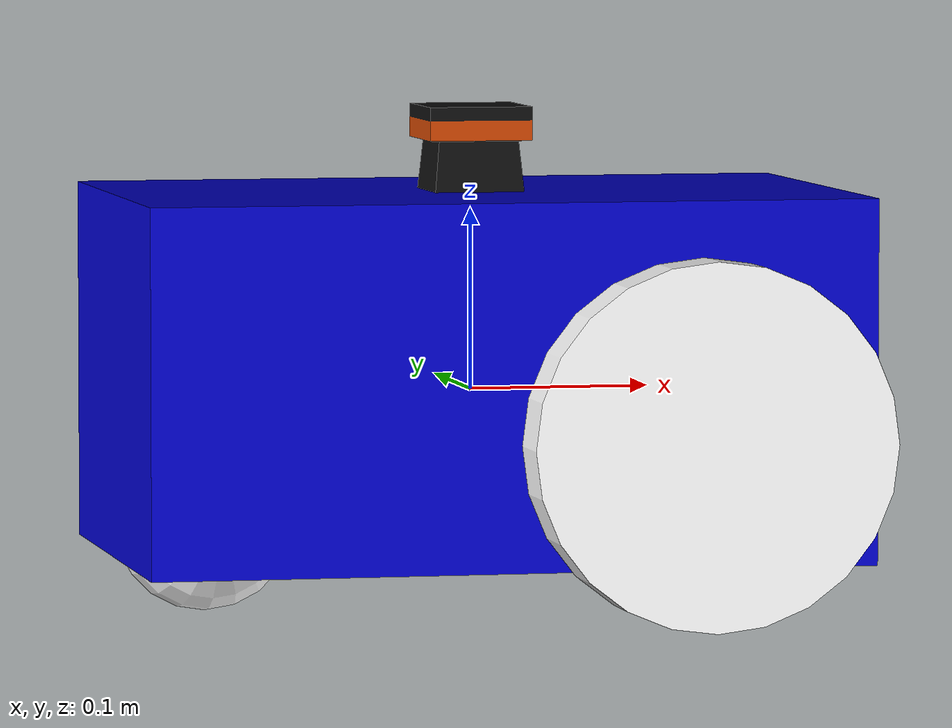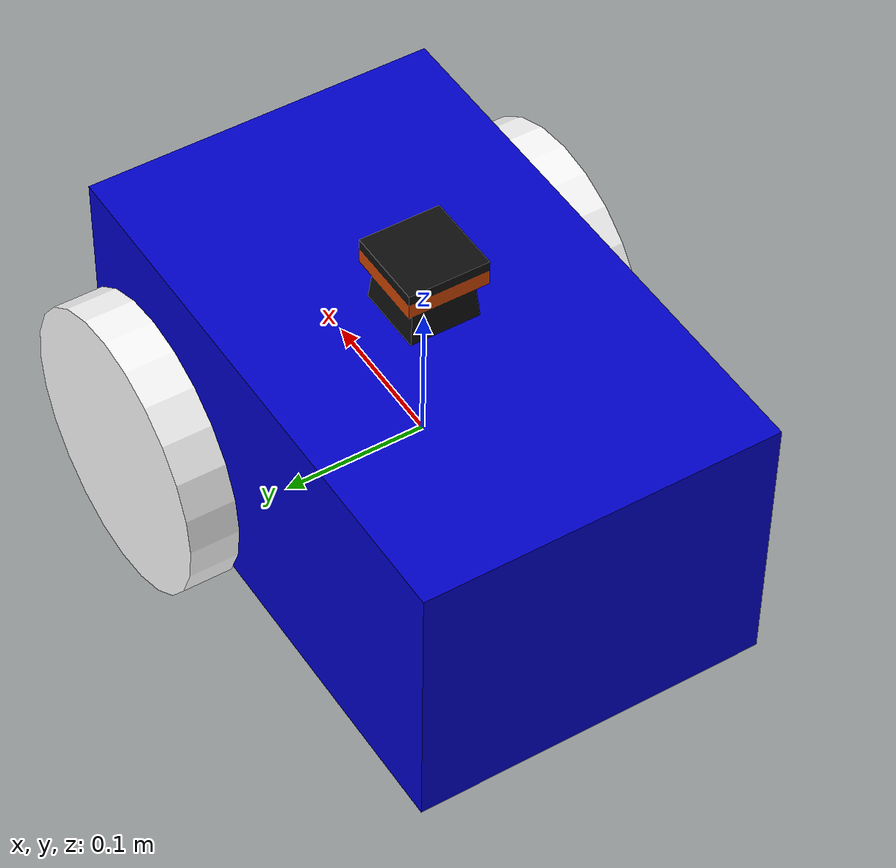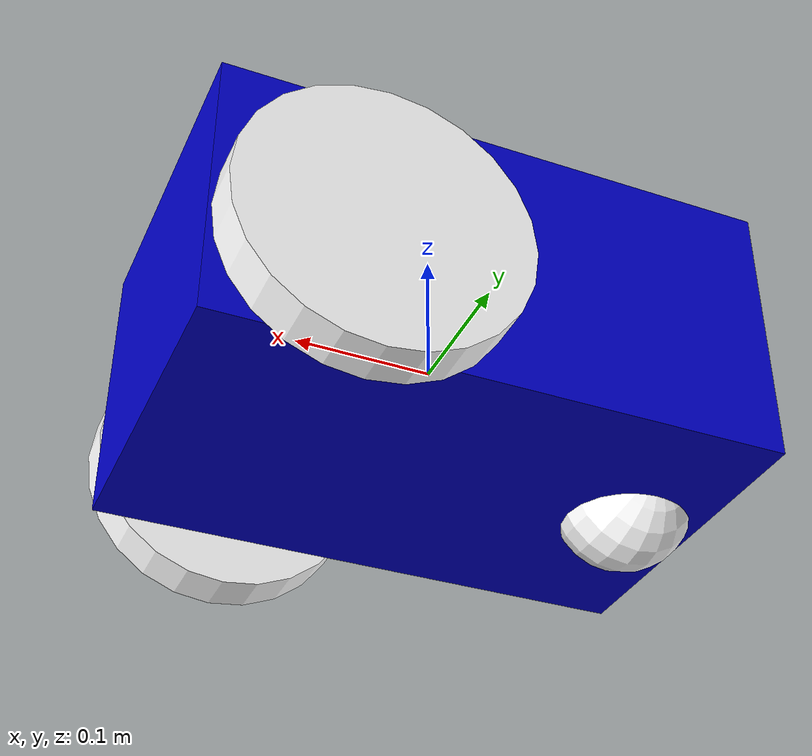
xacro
<?xml version="1.0"?>
<robot name="dummyRplidarSquare" xmlns:xacro="http://ros.org/wiki/xacro">

    <material name="blue">
        <color rgba="0 0 0.8 1"/>
    </material>
    <material name="black">
        <color rgba="0 0 0 1"/>
    </material>
    <material name="white">
        <color rgba="1 1 1 1"/>
    </material>

    <xacro:property name="baseWidth" value="0.25" />
    <xacro:property name="baseHeight" value="0.2" />
    <xacro:property name="baseLength" value="0.4" />
    <xacro:property name="baseClearance" value="0.03" />
    <xacro:property name="wheelsPosition" value="+0.10" />
    <xacro:property name="casterPosition" value="-0.15" />

    <xacro:property name="wheelRadius" value="0.1" />
    <xacro:property name="wheelThickness" value="0.035" />
    <xacro:property name="wheelClearance" value="0.01" />
    <xacro:property name="wheelMass" value="2" />
    <xacro:property name="hingeHeightInBase" value="0.07" />

    <xacro:property name="casterRadius" value="0.05" />
    <xacro:property name="casterHeight" value="0.04" />
    <xacro:property name="casterMass" value="0.00001" />

    <xacro:macro name="default_inertial" params="mass">
        <inertial>
            <mass value="${mass}" />
            <inertia ixx="1.0" ixy="0.0" ixz="0.0" iyy="1.0" iyz="0.0" izz="1.0" />
        </inertial>
    </xacro:macro>

    <link name="base_footprint"/>
    <joint name="base_joint" type="fixed">
      <origin xyz="0 0 0.0102" rpy="0 0 0" />
      <parent link="base_footprint"/>
      <child link="base_link" />
    </joint>

    <link name="base_link">
        <visual>
            <geometry>
                <box size="${baseLength} ${baseWidth} ${baseHeight}"/>
            </geometry>
            <material name="blue"/>
        </visual>
        <collision>
            <geometry>
                <box size="${baseLength} ${baseWidth} ${baseHeight}"/>
            </geometry>
        </collision>
        <inertial>
          <mass value="10"/>
          <inertia ixx="0.1667" ixy="0.0" ixz="0.0" iyy="0.1854" iyz="0.0" izz="0.0854"/>
        </inertial>
    </link>

    <link name="right_wheel">
        <visual>
            <origin rpy="0 0 0" xyz="0 0 0"/>
            <geometry>
                <cylinder length="${wheelThickness}" radius="${wheelRadius}"/>
            </geometry>
            <material name="white"/>
        </visual>
        <collision>
            <origin rpy="0 0 0" xyz="0 0 0"/>
            <geometry>
                <cylinder length="${wheelThickness}" radius="${wheelRadius}"/>
            </geometry>
        </collision>
        <inertial>
            <origin rpy="0 0 0" xyz="0 0 0"/>
            <mass value="${wheelMass}"/>
            <inertia ixx="0.0052" ixy="0.0" ixz="0.0" iyy="0.0052" iyz="0.0" izz="0.01"/>
        </inertial>
    </link>

    <joint name="base_to_right_wheel" type="continuous">
        <axis rpy="0 0 0" xyz="0 0 1"/>
        <parent link="base_link"/>
        <child link="right_wheel"/>
        <origin xyz="${wheelsPosition} -${(wheelThickness/2 + baseWidth/2 + wheelClearance)} -${baseHeight/2 - hingeHeightInBase}" rpy="-1.57075 0 0"/>

    </joint>

    <!-- This block provides the simulator (Gazebo) with information on a few additional
    physical properties. See http://gazebosim.org/tutorials/?tut=ros_urdf for more-->
    <gazebo reference="right_wheel">
        <mu1 value="75.0"/>
        <mu2 value="75.0"/>
        <kp value="1000000.0" />
        <kd value="1.0" />
        <material>Gazebo/Grey</material>
    </gazebo>

    <!-- This block connects the wheel joint to an actuator (motor), which informs both
    simulation and visualization of the robot -->
    <transmission name="right_wheel_trans">
        <type>transmission_interface/SimpleTransmission</type>
        <actuator name="right_wheel_motor">
            <mechanicalReduction>1</mechanicalReduction>
        </actuator>
        <joint name="base_to_right_wheel">
            <hardwareInterface>hardware_interface/VelocityJointInterface</hardwareInterface>
        </joint>
    </transmission>

    <link name="left_wheel">
        <visual>
            <origin rpy="0 0 0" xyz="0 0 0"/>
            <geometry>
                <cylinder length="${wheelThickness}" radius="${wheelRadius}"/>
            </geometry>
            <material name="white"/>
        </visual>
        <collision>
            <origin rpy="0 0 0" xyz="0 0 0"/>
            <geometry>
                <cylinder length="${wheelThickness}" radius="${wheelRadius}"/>
            </geometry>
        </collision>
        <inertial>
            <origin rpy="0 0 0" xyz="0 0 0"/>
            <mass value="${wheelMass}"/>
            <inertia ixx="0.0052" ixy="0.0" ixz="0.0" iyy="0.0052" iyz="0.0" izz="0.01"/>
        </inertial>
    </link>

    <joint name="base_to_left_wheel" type="continuous">
        <axis rpy="0 0 0" xyz="0 0 1"/>
        <parent link="base_link"/>
        <child link="left_wheel"/>
        <origin xyz="${wheelsPosition} +${(wheelThickness/2 + baseWidth/2 + wheelClearance)} -${baseHeight/2 - hingeHeightInBase}" rpy="-1.57075 0 0"/>

    </joint>

    <!-- This block provides the simulator (Gazebo) with information on a few additional
    physical properties. See http://gazebosim.org/tutorials/?tut=ros_urdf for more-->
    <gazebo reference="left_wheel">
        <mu1 value="75.0"/>
        <mu2 value="75.0"/>
        <kp value="1000000.0" />
        <kd value="1.0" />
        <material>Gazebo/Grey</material>
    </gazebo>

    <!-- This block connects the wheel joint to an actuator (motor), which informs both
    simulation and visualization of the robot -->
    <transmission name="left_wheel_trans">
        <type>transmission_interface/SimpleTransmission</type>
        <actuator name="left_wheel_motor">
            <mechanicalReduction>1</mechanicalReduction>
        </actuator>
        <joint name="base_to_left_wheel">
            <hardwareInterface>hardware_interface/VelocityJointInterface</hardwareInterface>
        </joint>
    </transmission>

    <link name="caster_back">
        <visual>
            <origin rpy="0 0 0" xyz="0 0 0"/>
            <geometry>
                <sphere radius="${casterRadius}"/>
            </geometry>
            <material name="white"/>
        </visual>
        <collision>
            <geometry>
                <sphere radius="${casterRadius}"/>
            </geometry>
            <surface>
                <friction>
                    <ode>
                        <mu>0</mu>
                        <mu2>0</mu2>
                        <slip1>1.0</slip1>
                        <slip2>1.0</slip2>
                    </ode>
                </friction>
            </surface>
        </collision>
        <inertial>
            <mass value="${casterMass}"/>
            <inertia ixx="0.00000001" ixy="0.0" ixz="0.0" iyy="0.00000001" iyz="0.0" izz="0.00000001"/>
        </inertial>
    </link>

    <joint name="base_to_caster_back" type="fixed">
        <parent link="base_link"/>
        <child link="caster_back"/>
        <origin xyz="${casterPosition} 0 -${baseHeight/2 + baseClearance - casterRadius}" rpy="1.57075 0 0"/>
    </joint>

    <gazebo reference="base_to_caster_back">
        <mu1 value="0.0"/>
        <mu2 value="0.0"/>
        <kp value="1000000.0" />
        <kd value="1.0" />
        <material>Gazebo/Grey</material>
    </gazebo>

    <!-- Kobuki's sensors -->
    <joint name="gyro_joint" type="fixed">
      <axis xyz="0 1 0"/>
      <origin xyz="${wheelsPosition} 0 -${baseHeight/2 - hingeHeightInBase}" rpy="0 0 0"/>
      <parent link="base_link"/>
      <child link="gyro_link"/>
    </joint>
    <link name="gyro_link">
      <inertial>
        <mass value="0.001"/>
        <origin xyz="0 0 0" rpy="0 0 0"/>
        <inertia ixx="0.0001" ixy="0" ixz="0"
                 iyy="0.000001" iyz="0"
                 izz="0.0001"/>
      </inertial>
    </link>

    <gazebo reference="gyro_link">
        <gravity>true</gravity>
        <sensor name="imu_sensor" type="imu">
            <always_on>true</always_on>
            <update_rate>100</update_rate>
            <visualize>true</visualize>
            <topic>__default_topic__</topic>
            <plugin filename="libgazebo_ros_imu_sensor.so" name="imu_plugin">
                <topicName>imu</topicName>
                <bodyName>gyro_link</bodyName>
                <updateRateHZ>10.0</updateRateHZ>
                <gaussianNoise>0.0</gaussianNoise>
                <xyzOffset>0 0 0</xyzOffset>
                <rpyOffset>0 0 0</rpyOffset>
                <frameName>gyro_link</frameName>
            </plugin>
            <pose>0 0 0 0 0 0</pose>
        </sensor>
    </gazebo>

    <gazebo>
      <plugin name="gazebo_ros_control" filename="libgazebo_ros_control.so">
        <robotNamespace>/</robotNamespace>

      </plugin>
    </gazebo>

    <xacro:include filename="$(find hector_sensors_description)/urdf/hokuyo_utm30lx.urdf.xacro" />
    <!-- For the moment, we only have a hokuyo with rplidar'specs. -->
     <xacro:hokuyo_utm30lx name="hokuyo_laser" parent="base_link" ros_topic="scan" update_rate="5.5" ray_count="360" min_angle="0" max_angle="359">
       <origin xyz="0 0 ${(baseClearance + baseHeight)/2}" rpy="0 0 0"/>
     </xacro:hokuyo_utm30lx>

</robot>

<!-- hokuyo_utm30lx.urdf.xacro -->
<robot xmlns:xacro="http://ros.org/wiki/xacro">
    <xacro:property name="M_PI" value="3.1415926535897931" />

    <xacro:macro name="hokuyo_utm30lx_model" params="name parent *origin">
      <joint name="${name}_joint" type="fixed">
        <xacro:insert_block name="origin" />
        <parent link="${parent}"/>
        <child link="${name}_frame"/>
      </joint>

      <link name="${name}_frame">
        <inertial>
          <mass value="0.270" />
          <origin xyz="0 0 0" rpy="0 0 0" />
          <inertia ixx="2.632e-4" ixy="0" ixz="0" iyy="2.632e-4" iyz="0" izz="1.62e-4" />
        </inertial>
        <visual>
          <origin xyz="0 0 0" rpy="0 0 0" />
          <geometry>
          <mesh filename="package://hector_sensors_description/meshes/hokuyo_utm30lx/hokuyo_utm_30lx$(optenv TEST_SELF_FILTER).dae"/>
        </geometry>
        </visual>
        <collision>
          <origin xyz="0.00 0 0.0" rpy="0 ${0.5 * M_PI} 0" />
          <geometry>
	    <cylinder length="0.079" radius="0.0735"/>
        </geometry>
        </collision>
      </link>
    </xacro:macro>

    <xacro:macro name="hokuyo_utm30lx" params="name parent *origin ros_topic update_rate ray_count min_angle max_angle">
      <xacro:hokuyo_utm30lx_model name="${name}" parent="${parent}">
        <xacro:insert_block name="origin" />
      </xacro:hokuyo_utm30lx_model>

      <gazebo reference="${name}_frame">
        <sensor type="ray" name="${name}">
          <always_on>true</always_on>
          <update_rate>${update_rate}</update_rate>
          <pose>0 0 0 0 0 0</pose>
          <visualize>false</visualize>
          <ray>
            <scan>
              <horizontal>
                <samples>${ray_count}</samples>
                <resolution>1</resolution>
                <min_angle>${min_angle * M_PI/180}</min_angle>
                <max_angle>${max_angle * M_PI/180}</max_angle>
              </horizontal>
            </scan>
            <range>
              <min>0.2</min>
              <max>30.0</max>
              <resolution>0.01</resolution>
            </range>
            <noise>
              <type>gaussian</type>
              <mean>0.0</mean>
              <stddev>0.004</stddev>
            </noise>
          </ray>
          <plugin name="gazebo_ros_${name}_controller" filename="libgazebo_ros_laser.so">
            <gaussianNoise>0.005</gaussianNoise>
            <hokuyoMinIntensity>2000</hokuyoMinIntensity>
            <alwaysOn>true</alwaysOn>
	    <robotNamespace>$(arg robot_name)/sensor/</robotNamespace>
            <updateRate>${update_rate}</updateRate>
            <topicName>${ros_topic}</topicName>
            <frameName>${name}_frame</frameName>
          </plugin>
        </sensor>
      </gazebo>
    </xacro:macro>

    <xacro:macro name="hokuyo_utm30lx_gpu" params="name parent *origin ros_topic update_rate ray_count min_angle max_angle">
      <xacro:hokuyo_utm30lx_model name="${name}" parent="${parent}">
        <xacro:insert_block name="origin" />
      </xacro:hokuyo_utm30lx_model>

      <gazebo reference="${name}_frame">
        <sensor type="gpu_ray" name="${name}">
          <update_rate>${update_rate}</update_rate>
          <pose>0 0 0 0 0 0</pose>
          <visualize>false</visualize>
          <ray>
            <scan>
              <horizontal>
                <samples>${ray_count}</samples>
                <resolution>1</resolution>
                <min_angle>${min_angle * M_PI/180}</min_angle>
                <max_angle>${max_angle * M_PI/180}</max_angle>
              </horizontal>
            </scan>
            <range>
              <min>0.2</min>
              <max>30.0</max>
              <resolution>0.01</resolution>
            </range>
            <noise>
              <type>gaussian</type>
              <mean>0.0</mean>
              <stddev>0.004</stddev>
            </noise>
          </ray>
          <plugin name="gazebo_ros_${name}_controller" filename="libgazebo_ros_gpu_laser.so">
            <topicName>${ros_topic}</topicName>
            <frameName>${name}_frame</frameName>
          </plugin>
        </sensor>
      </gazebo>
    </xacro:macro>
</robot>
